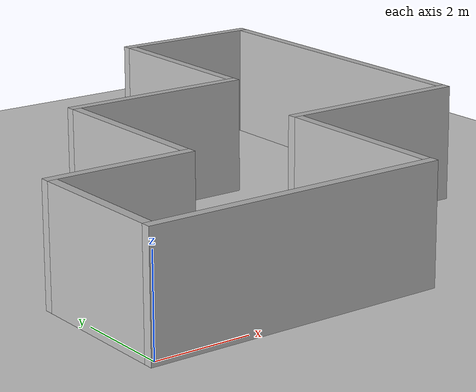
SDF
<?xml version="1.0" ?>
<sdf version="1.4">
	<world name="feedback_experiment_world_0">
		<scene>
			<sky/>
		</scene>
		<include>
			<uri>model://ground_plane</uri>
		</include>
		<include>
			<uri>model://sun</uri>
		</include>
		<model name='BuildingDefaultName'>
			<link name='Wall_1'>
				<collision name='Wall_1_Collision'>
					<geometry>
						<box>
							<size>6.4 0.2 2.5</size>
						</box>
					</geometry>
					<pose>0 0 1.25 0 0 0</pose>
				</collision>
				<visual name='Wall_1_Visual'>
					<pose>0 0 1.25 0 0 0</pose>
					<geometry>
						<box>
						<size>6.4 0.2 2.5</size>
						</box>
					</geometry>
					<material>
						<script>
						<uri>file://media/materials/scripts/kitchen.material</uri>
						<name>Kitchen/Wall</name>
						</script>
					</material>
				</visual>
				<velocity_decay>
					<linear>0</linear>
					<angular>0</angular>
				</velocity_decay>
				<pose>3 -0.1 0 0 0 0</pose>
			</link>
			<link name='Wall_2'>
				<collision name='Wall_2_Collision'>
					<geometry>
						<box>
							<size>3.8 0.2 2.5</size>
						</box>
					</geometry>
					<pose>0 0 1.25 0 0 0</pose>
				</collision>
				<visual name='Wall_2_Visual'>
					<pose>0 0 1.25 0 0 0</pose>
					<geometry>
						<box>
							<size>3.8 0.2 2.5</size>
						</box>
					</geometry>
					<material>
						<script>
							<uri>file://media/materials/scripts/kitchen.material</uri>
							<name>Kitchen/Wall</name>
						</script>
					</material>
				</visual>
				<velocity_decay>
					<linear>0</linear>
					<angular>0</angular>
				</velocity_decay>
				<pose>6.1 1.9 0 0 0 1.5708</pose>
			</link>
			<link name='Wall_3'>
				<collision name='Wall_3_Collision'>
					<geometry>
						<box>
							<size>4.2 0.2 2.5</size>
						</box>
					</geometry>
					<pose>0 0 1.25 0 0 0</pose>
				</collision>
				<visual name='Wall_3_Visual'>
					<pose>0 0 1.25 0 0 0</pose>
					<geometry>
						<box>
							<size>4.2 0.2 2.5</size>
						</box>
					</geometry>
					<material>
						<script>
							<uri>file://media/materials/scripts/kitchen.material</uri>
							<name>Kitchen/Wall</name>
						</script>
					</material>
				</visual>
				<velocity_decay>
					<linear>0</linear>
					<angular>0</angular>
				</velocity_decay>
				<pose>8.1 3.9 0 0 0 0</pose>
			</link>
			<link name='Wall_4'>
				<collision name='Wall_4_Collision'>
					<geometry>
						<box>
							<size>7 0.2 2.5</size>
						</box>
					</geometry>
					<pose>0 0 1.25 0 0 0</pose>
				</collision>
				<visual name='Wall_4_Visual'>
					<pose>0 0 1.25 0 0 0</pose>
					<geometry>
						<box>
							<size>7 0.2 2.5</size>
						</box>
					</geometry>
					<material>
					<script>
						<uri>file://media/materials/scripts/kitchen.material</uri>
						<name>Kitchen/Wall</name>
					</script>
					</material>
				</visual>
				<velocity_decay>
					<linear>0</linear>
					<angular>0</angular>
				</velocity_decay>
				<pose>10.1 7.5 0 0 0 1.5708</pose>
			</link>
			<link name='Wall_5'>
				<collision name='Wall_5_Collision'>
					<geometry>
						<box>
							<size>3.4 0.2 2.5</size>
						</box>
					</geometry>
					<pose>0 0 1.25 0 0 0</pose>
				</collision>
				<visual name='Wall_5_Visual'>
					<pose>0 0 1.25 0 0 0</pose>
					<geometry>
						<box>
							<size>3.4 0.2 2.5</size>
						</box>
					</geometry>
					<material>
					<script>
						<uri>file://media/materials/scripts/kitchen.material</uri>
						<name>Kitchen/Wall</name>
					</script>
					</material>
				</visual>
				<velocity_decay>
					<linear>0</linear>
					<angular>0</angular>
				</velocity_decay>
				<pose>8.5 11.1 0 0 0 3.14159</pose>
			</link>
			<link name='Wall_6'>
				<collision name='Wall_6_Collision'>
					<geometry>
						<box>
							<size>3.8 0.2 2.5</size>
						</box>
					</geometry>
					<pose>0 0 1.25 0 0 0</pose>
				</collision>
				<visual name='Wall_6_Visual'>
					<pose>0 0 1.25 0 0 0</pose>
					<geometry>
						<box>
							<size>3.8 0.2 2.5</size>
						</box>
					</geometry>
					<material>
					<script>
						<uri>file://media/materials/scripts/kitchen.material</uri>
						<name>Kitchen/Wall</name>
					</script>
					</material>
				</visual>
				<velocity_decay>
					<linear>0</linear>
					<angular>0</angular>
				</velocity_decay>
				<pose>6.9 9.1 0 0 0 -1.5708</pose>
			</link>
			<link name='Wall_7'>
				<collision name='Wall_7_Collision'>
					<geometry>
						<box>
							<size>4.2 0.2 2.5</size>
						</box>
					</geometry>
					<pose>0 0 1.25 0 0 0</pose>
				</collision>
				<visual name='Wall_7_Visual'>
					<pose>0 0 1.25 0 0 0</pose>
					<geometry>
						<box>
							<size>4.2 0.2 2.5</size>
						</box>
					</geometry>
					<material>
					<script>
						<uri>file://media/materials/scripts/kitchen.material</uri>
						<name>Kitchen/Wall</name>
					</script>
					</material>
				</visual>
				<velocity_decay>
					<linear>0</linear>
					<angular>0</angular>
				</velocity_decay>
				<pose>4.9 7.1 0 0 0 3.14159</pose>
			</link>
			<link name='Wall_8'>
				<collision name='Wall_8_Collision'>
					<geometry>
						<box>
							<size>3.8 0.2 2.5</size>
						</box>
					</geometry>
					<pose>0 0 1.25 0 0 0</pose>
				</collision>
				<visual name='Wall_8_Visual'>
					<pose>0 0 1.25 0 0 0</pose>
					<geometry>
						<box>
							<size>3.8 0.2 2.5</size>
						</box>
					</geometry>
					<material>
					<script>
						<uri>file://media/materials/scripts/kitchen.material</uri>
						<name>Kitchen/Wall</name>
					</script>
					</material>
				</visual>
				<velocity_decay>
					<linear>0</linear>
					<angular>0</angular>
				</velocity_decay>
				<pose>2.9 5.1 0 0 0 -1.5708</pose>
			</link>
			<link name='Wall_9'>
				<collision name='Wall_9_Collision'>
					<geometry>
						<box>
							<size>3.2 0.2 2.5</size>
						</box>
					</geometry>
					<pose>0 0 1.25 0 0 0</pose>
				</collision>
				<visual name='Wall_9_Visual'>
					<pose>0 0 1.25 0 0 0</pose>
					<geometry>
						<box>
							<size>3.2 0.2 2.5</size>
						</box>
					</geometry>
					<material>
					<script>
						<uri>file://media/materials/scripts/kitchen.material</uri>
						<name>Kitchen/Wall</name>
					</script>
					</material>
				</visual>
				<velocity_decay>
					<linear>0</linear>
					<angular>0</angular>
				</velocity_decay>
				<pose>1.4 3.1 0 0 0 3.14159</pose>
			</link>
			<link name='Wall_10'>
				<collision name='Wall_10_Collision'>
					<geometry>
						<box>
							<size>3 0.2 2.5</size>
						</box>
					</geometry>
					<pose>0 0 1.25 0 0 0</pose>
				</collision>
				<visual name='Wall_10_Visual'>
					<pose>0 0 1.25 0 0 0</pose>
					<geometry>
						<box>
							<size>3 0.2 2.5</size>
						</box>
					</geometry>
					<material>
					<script>
						<uri>file://media/materials/scripts/kitchen.material</uri>
						<name>Kitchen/Wall</name>
					</script>
					</material>
				</visual>
				<velocity_decay>
					<linear>0</linear>
					<angular>0</angular>
				</velocity_decay>
				<pose>-0.1 1.5 0 0 0 -1.5708</pose>
			</link>
			<static>1</static>
		</model>
	</world>
</sdf>
